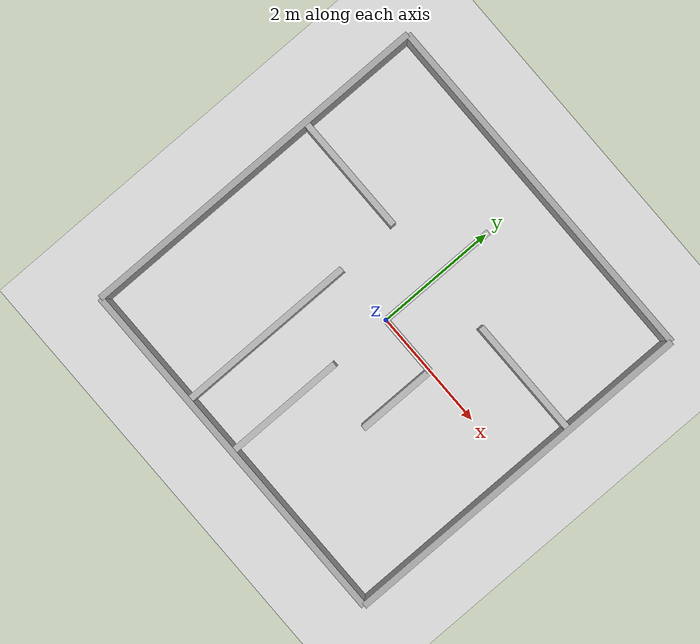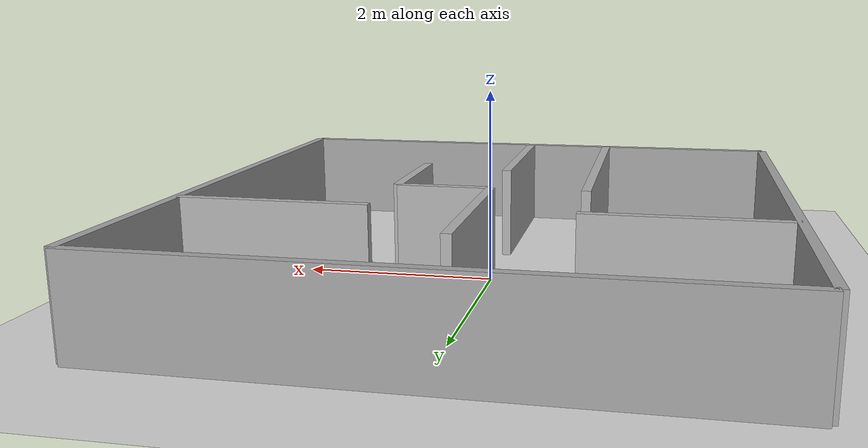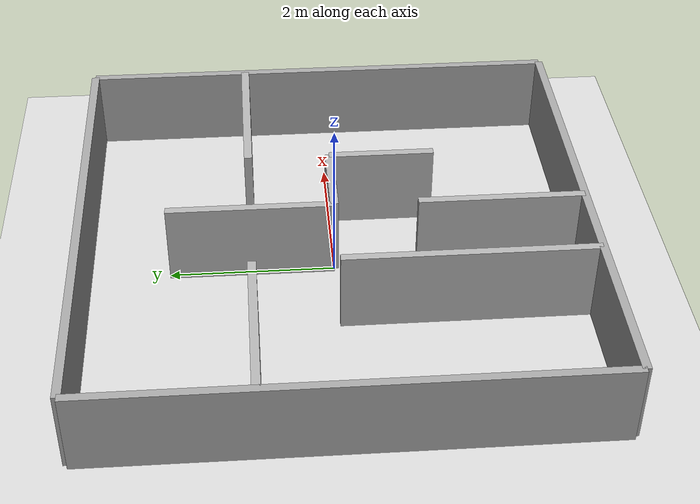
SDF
<?xml version="1.0"?>
<sdf version="1.9">
  <world name="maze_clean_drawn_6x6_rot90">

    <plugin filename="gz-sim-physics-system" name="gz::sim::systems::Physics"/>
    <plugin filename="gz-sim-scene-broadcaster-system" name="gz::sim::systems::SceneBroadcaster"/>
    <plugin filename="gz-sim-user-commands-system" name="gz::sim::systems::UserCommands"/>

    <plugin filename="gz-sim-sensors-system" name="gz::sim::systems::Sensors">
      <render_engine>ogre2</render_engine>
    </plugin>

    <light type="directional" name="sun">
      <pose>0 0 10 0 0 0</pose>
      <diffuse>1 1 1 1</diffuse>
      <specular>0.2 0.2 0.2 1</specular>
      <direction>-0.5 0.1 -0.9</direction>
    </light>

    <model name="ground_plane">
      <static>true</static>
      <link name="link">
        <collision name="collision">
          <geometry>
            <plane>
              <normal>0 0 1</normal>
              <size>10 10</size>
            </plane>
          </geometry>
        </collision>

        <visual name="visual">
          <geometry>
            <plane>
              <normal>0 0 1</normal>
              <size>10 10</size>
            </plane>
          </geometry>

          <material>
            <ambient>0.85 0.85 0.85 1</ambient>
            <diffuse>0.85 0.85 0.85 1</diffuse>
          </material>
        </visual>
      </link>
    </model>

    <!-- Outer walls -->

    <model name="outer_wall_top">
      <static>true</static>
      <pose>3 0 0.5 0 0 0</pose>

      <link name="link">
        <collision name="collision">
          <geometry>
            <box>
              <size>0.1 6 1</size>
            </box>
          </geometry>
        </collision>

        <visual name="visual">
          <geometry>
            <box>
              <size>0.1 6 1</size>
            </box>
          </geometry>

          <material>
            <ambient>0.65 0.65 0.65 1</ambient>
            <diffuse>0.65 0.65 0.65 1</diffuse>
          </material>
        </visual>
      </link>
    </model>

    <model name="outer_wall_bottom">
      <static>true</static>
      <pose>-3 0 0.5 0 0 0</pose>

      <link name="link">
        <collision name="collision">
          <geometry>
            <box>
              <size>0.1 6 1</size>
            </box>
          </geometry>
        </collision>

        <visual name="visual">
          <geometry>
            <box>
              <size>0.1 6 1</size>
            </box>
          </geometry>

          <material>
            <ambient>0.65 0.65 0.65 1</ambient>
            <diffuse>0.65 0.65 0.65 1</diffuse>
          </material>
        </visual>
      </link>
    </model>

    <model name="outer_wall_left">
      <static>true</static>
      <pose>0 3 0.5 0 0 0</pose>

      <link name="link">
        <collision name="collision">
          <geometry>
            <box>
              <size>6 0.1 1</size>
            </box>
          </geometry>
        </collision>

        <visual name="visual">
          <geometry>
            <box>
              <size>6 0.1 1</size>
            </box>
          </geometry>

          <material>
            <ambient>0.65 0.65 0.65 1</ambient>
            <diffuse>0.65 0.65 0.65 1</diffuse>
          </material>
        </visual>
      </link>
    </model>

    <model name="outer_wall_right">
      <static>true</static>
      <pose>0 -3 0.5 0 0 0</pose>

      <link name="link">
        <collision name="collision">
          <geometry>
            <box>
              <size>6 0.1 1</size>
            </box>
          </geometry>
        </collision>

        <visual name="visual">
          <geometry>
            <box>
              <size>6 0.1 1</size>
            </box>
          </geometry>

          <material>
            <ambient>0.65 0.65 0.65 1</ambient>
            <diffuse>0.65 0.65 0.65 1</diffuse>
          </material>
        </visual>
      </link>
    </model>

    <!-- Inner walls -->

    <model name="inner_left_upper_vertical">
      <static>true</static>
      <pose>2 1 0.5 0 0 0</pose>

      <link name="link">
        <collision name="collision">
          <geometry>
            <box>
              <size>2 0.1 1</size>
            </box>
          </geometry>
        </collision>

        <visual name="visual">
          <geometry>
            <box>
              <size>2 0.1 1</size>
            </box>
          </geometry>

          <material>
            <ambient>0.7 0.7 0.7 1</ambient>
            <diffuse>0.7 0.7 0.7 1</diffuse>
          </material>
        </visual>
      </link>
    </model>

    <model name="inner_left_middle_horizontal">
      <static>true</static>
      <pose>0 1 0.5 0 0 0</pose>

      <link name="link">
        <collision name="collision">
          <geometry>
            <box>
              <size>0.1 2 1</size>
            </box>
          </geometry>
        </collision>

        <visual name="visual">
          <geometry>
            <box>
              <size>0.1 2 1</size>
            </box>
          </geometry>

          <material>
            <ambient>0.7 0.7 0.7 1</ambient>
            <diffuse>0.7 0.7 0.7 1</diffuse>
          </material>
        </visual>
      </link>
    </model>

    <model name="inner_left_lower_vertical">
      <static>true</static>
      <pose>-2 1 0.5 0 0 0</pose>

      <link name="link">
        <collision name="collision">
          <geometry>
            <box>
              <size>2 0.1 1</size>
            </box>
          </geometry>
        </collision>

        <visual name="visual">
          <geometry>
            <box>
              <size>2 0.1 1</size>
            </box>
          </geometry>

          <material>
            <ambient>0.7 0.7 0.7 1</ambient>
            <diffuse>0.7 0.7 0.7 1</diffuse>
          </material>
        </visual>
      </link>
    </model>

    <model name="inner_center_vertical">
      <static>true</static>
      <pose>0.5 0 0.5 0 0 0</pose>

      <link name="link">
        <collision name="collision">
          <geometry>
            <box>
              <size>1 0.1 1</size>
            </box>
          </geometry>
        </collision>

        <visual name="visual">
          <geometry>
            <box>
              <size>1 0.1 1</size>
            </box>
          </geometry>

          <material>
            <ambient>0.7 0.7 0.7 1</ambient>
            <diffuse>0.7 0.7 0.7 1</diffuse>
          </material>
        </visual>
      </link>
    </model>

    <model name="inner_upper_center_horizontal">
      <static>true</static>
      <pose>1 -0.65 0.5 0 0 0</pose>

      <link name="link">
        <collision name="collision">
          <geometry>
            <box>
              <size>0.1 1.3 1</size>
            </box>
          </geometry>
        </collision>

        <visual name="visual">
          <geometry>
            <box>
              <size>0.1 1.3 1</size>
            </box>
          </geometry>

          <material>
            <ambient>0.7 0.7 0.7 1</ambient>
            <diffuse>0.7 0.7 0.7 1</diffuse>
          </material>
        </visual>
      </link>
    </model>

    <model name="inner_right_middle_short_horizontal">
      <static>true</static>
      <pose>0 -2 0.5 0 0 0</pose>

      <link name="link">
        <collision name="collision">
          <geometry>
            <box>
              <size>0.1 2 1</size>
            </box>
          </geometry>
        </collision>

        <visual name="visual">
          <geometry>
            <box>
              <size>0.1 2 1</size>
            </box>
          </geometry>

          <material>
            <ambient>0.7 0.7 0.7 1</ambient>
            <diffuse>0.7 0.7 0.7 1</diffuse>
          </material>
        </visual>
      </link>
    </model>

    <model name="inner_right_lower_horizontal">
      <static>true</static>
      <pose>-1 -1.5 0.5 0 0 0</pose>

      <link name="link">
        <collision name="collision">
          <geometry>
            <box>
              <size>0.1 3 1</size>
            </box>
          </geometry>
        </collision>

        <visual name="visual">
          <geometry>
            <box>
              <size>0.1 3 1</size>
            </box>
          </geometry>

          <material>
            <ambient>0.7 0.7 0.7 1</ambient>
            <diffuse>0.7 0.7 0.7 1</diffuse>
          </material>
        </visual>
      </link>
    </model>

  </world>
</sdf>
